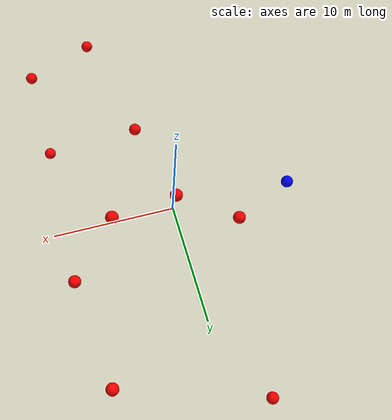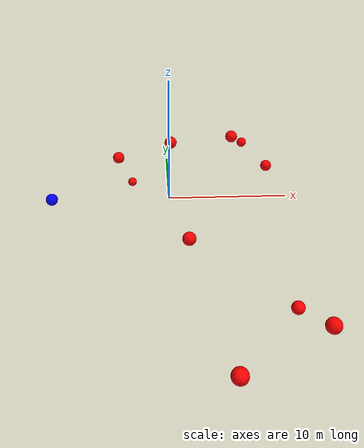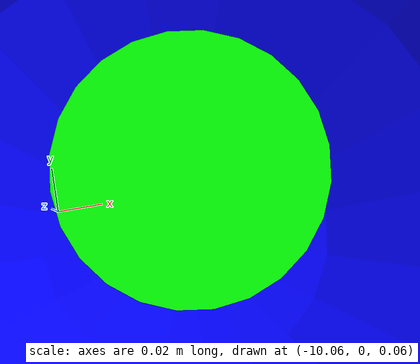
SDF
<?xml version="1.0" ?>
<sdf version="1.8">
    <world name="3d_world">
        <physics name="1ms" type="ode">
            <max_step_size>0.001</max_step_size>
            <real_time_factor>1.0</real_time_factor>
            <real_time_update_rate>1000.0</real_time_update_rate>
        </physics>
        <gravity>0 0 0</gravity>

        <plugin
            filename="gz-sim-physics-system"
            name="gz::sim::v8::systems::Physics">
        </plugin>
        <plugin
            filename="libignition-gazebo-user-commands-system.so"
            name="ignition::gazebo::systems::UserCommands">
        </plugin>
        <plugin
            filename="gz-sim-scene-broadcaster-system"
            name="gz::sim::systems::SceneBroadcaster">
        </plugin>
        <plugin
            filename="gz-sim-sensors-system"
            name="gz::sim::systems::Sensors">
            <render_engine>ogre2</render_engine>
        </plugin>

        <light type="directional" name="sun">
            <cast_shadows>true</cast_shadows>
            <pose>0 0 10 0 0 0</pose>
            <diffuse>0.8 0.8 0.8 1</diffuse>
            <specular>0.2 0.2 0.2 1</specular>
            <attenuation>
                <range>1000</range>
                <constant>0.9</constant>
                <linear>0.01</linear>
                <quadratic>0.001</quadratic>
            </attenuation>
            <direction>-0.5 0.1 -0.9</direction>
        </light>

        <!-- AGENTE -->
        <model name='agente' canonical_link='chassis'>
            <pose relative_to='world'>-10.0 0 0.0 0 0 0</pose>
            <link name='chassis'>
                <pose relative_to='__model__'>0.0 0 0.0 0 0 0</pose>
                <inertial>
                    <mass>1.14395</mass>
                    <inertia>
                        <ixx>0.095329</ixx>
                        <ixy>0</ixy>
                        <ixz>0</ixz>
                        <iyy>0.381317</iyy>
                        <iyz>0</iyz>
                        <izz>0.476646</izz>
                    </inertia>
                </inertial>
                <visual name='visual'>
                    <geometry>
                        <sphere>
                            <radius>0.5</radius>
                        </sphere>
                    </geometry>
                    <material>
                        <ambient>0.0 0.0 1.0 1</ambient>
                        <diffuse>0.0 0.0 1.0 1</diffuse>
                        <specular>0.0 0.0 1.0 1</specular>
                    </material>
                </visual>
                <collision name='collision'>
                    <geometry>
                        <sphere>
                            <radius>0.5</radius>
                        </sphere>
                    </geometry>
                </collision>
                <enable_gravity>false</enable_gravity>
            </link>

            <link name='lidar_link'>
                <pose relative_to='chassis'>0.0 0 0.1 0 0 0</pose>
                <inertial>
                    <mass>0.1</mass>
                    <inertia>
                        <ixx>0.000166667</ixx>
                        <iyy>0.000166667</iyy>
                        <izz>0.000166667</izz>
                    </inertia>
                </inertial>
                <collision name='collision'>
                    <geometry>
                        <cylinder>
                            <radius>0.05</radius>
                            <length>0.1</length>
                        </cylinder>
                    </geometry>
                </collision>
                <visual name='visual'>
                    <geometry>
                        <cylinder>
                            <radius>0.05</radius>
                            <length>0.1</length>
                        </cylinder>
                    </geometry>
                    <material>
                        <ambient>0.0 1.0 0.0 1</ambient>
                        <diffuse>0.0 1.0 0.0 1</diffuse>
                        <specular>0.0 1.0 0.0 1</specular>
                    </material>
                </visual>
                <sensor name="lidar" type="gpu_lidar">
                    <topic>scan</topic>
                    <update_rate>10</update_rate>
                    <lidar>
                        <scan>
                            <horizontal>
                                <samples>5000</samples>
                                <resolution>1</resolution>
                                <min_angle>-3.14159</min_angle>
                                <max_angle>3.14159</max_angle>
                            </horizontal>
                        </scan>
                        <range>
                            <min>0.1</min>
                            <max>10.0</max>
                            <resolution>0.01</resolution>
                        </range>
                    </lidar>
                    <visualize>true</visualize>
                    <always_on>true</always_on>
                    <update_rate>10</update_rate>
                    <pose_frame>lidar</pose_frame>
                </sensor>
                <enable_gravity>false</enable_gravity>
            </link>

            <joint name="lidar_joint" type="fixed">
                <parent>chassis</parent>
                <child>lidar_link</child>
            </joint>

            <plugin
                filename="ignition-gazebo-joint-state-publisher-system"
                name="ignition::gazebo::systems::JointStatePublisher">
            </plugin>
            <plugin
                filename="ignition-gazebo-odometry-publisher-system"
                name="ignition::gazebo::systems::OdometryPublisher">
                <dimensions>3</dimensions>
            </plugin>
            <plugin
                filename="ignition-gazebo-velocity-control-system"
                name="ignition::gazebo::systems::VelocityControl">
                <initial_linear>0.0 0 0</initial_linear>
                <initial_angular>0 0 0.0</initial_angular>
            </plugin>
            <plugin
                filename="libignition-gazebo-pose-publisher-system.so"
                name="ignition::gazebo::systems::PosePublisher">
                <topic>/agente/pose</topic>
                <frame_id>agente</frame_id>
                <update_rate>30</update_rate>
            </plugin>
        </model>

        <!-- OBSTACLE 1 -->
        <model name='obstacle_1' canonical_link='obstacle'>
            <static>false</static>
            <pose relative_to='world'>9.19 4.65 1.08 0 0 0</pose>
            <link name='obstacle'>
                <pose relative_to='__model__'>0.0 0 0.0 0 0 0</pose>
                <visual name='visual'>
                    <geometry>
                        <sphere>
                            <radius>0.50</radius>
                        </sphere>
                    </geometry>
                    <material>
                        <ambient>1.0 0.0 0.0 1</ambient>
                        <diffuse>1.0 0.0 0.0 1</diffuse>
                        <specular>1.0 0.0 0.0 1</specular>
                    </material>
                </visual>
                <collision name='collision'>
                    <geometry>
                        <sphere>
                            <radius>0.50</radius>
                        </sphere>
                    </geometry>
                </collision>
                <enable_gravity>false</enable_gravity>
            </link>

            <plugin
                filename="ignition-gazebo-velocity-control-system"
                name="ignition::gazebo::systems::VelocityControl">
                <initial_linear>-0.51 -0.73 -0.17</initial_linear>
                <initial_angular>0 0 0</initial_angular>
            </plugin>

            <plugin
                filename="ignition-gazebo-odometry-publisher-system"
                name="ignition::gazebo::systems::OdometryPublisher">
                <dimensions>3</dimensions>
            </plugin>
        </model>

        <!-- OBSTACLE 2 -->
        <model name='obstacle_2' canonical_link='obstacle'>
            <static>false</static>
            <pose relative_to='world'>-3.93 15.99 -4.92 0 0 0</pose>
            <link name='obstacle'>
                <pose relative_to='__model__'>0.0 0 0.0 0 0 0</pose>
                <visual name='visual'>
                    <geometry>
                        <sphere>
                            <radius>0.50</radius>
                        </sphere>
                    </geometry>
                    <material>
                        <ambient>1.0 0.0 0.0 1</ambient>
                        <diffuse>1.0 0.0 0.0 1</diffuse>
                        <specular>1.0 0.0 0.0 1</specular>
                    </material>
                </visual>
                <collision name='collision'>
                    <geometry>
                        <sphere>
                            <radius>0.50</radius>
                        </sphere>
                    </geometry>
                </collision>
                <enable_gravity>false</enable_gravity>
            </link>

            <plugin
                filename="ignition-gazebo-velocity-control-system"
                name="ignition::gazebo::systems::VelocityControl">
                <initial_linear>1.03 -1.64 0.51</initial_linear>
                <initial_angular>0 0 0</initial_angular>
            </plugin>

            <plugin
                filename="ignition-gazebo-odometry-publisher-system"
                name="ignition::gazebo::systems::OdometryPublisher">
                <dimensions>3</dimensions>
            </plugin>
        </model>

        <!-- OBSTACLE 3 -->
        <model name='obstacle_3' canonical_link='obstacle'>
            <static>false</static>
            <pose relative_to='world'>-4.43 3.29 2.54 0 0 0</pose>
            <link name='obstacle'>
                <pose relative_to='__model__'>0.0 0 0.0 0 0 0</pose>
                <visual name='visual'>
                    <geometry>
                        <sphere>
                            <radius>0.50</radius>
                        </sphere>
                    </geometry>
                    <material>
                        <ambient>1.0 0.0 0.0 1</ambient>
                        <diffuse>1.0 0.0 0.0 1</diffuse>
                        <specular>1.0 0.0 0.0 1</specular>
                    </material>
                </visual>
                <collision name='collision'>
                    <geometry>
                        <sphere>
                            <radius>0.50</radius>
                        </sphere>
                    </geometry>
                </collision>
                <enable_gravity>false</enable_gravity>
            </link>

            <plugin
                filename="ignition-gazebo-velocity-control-system"
                name="ignition::gazebo::systems::VelocityControl">
                <initial_linear>1.39 -0.65 -0.50</initial_linear>
                <initial_angular>0 0 0</initial_angular>
            </plugin>

            <plugin
                filename="ignition-gazebo-odometry-publisher-system"
                name="ignition::gazebo::systems::OdometryPublisher">
                <dimensions>3</dimensions>
            </plugin>
        </model>

        <!-- OBSTACLE 4 -->
        <model name='obstacle_4' canonical_link='obstacle'>
            <static>false</static>
            <pose relative_to='world'>8.29 13.32 0.64 0 0 0</pose>
            <link name='obstacle'>
                <pose relative_to='__model__'>0.0 0 0.0 0 0 0</pose>
                <visual name='visual'>
                    <geometry>
                        <sphere>
                            <radius>0.50</radius>
                        </sphere>
                    </geometry>
                    <material>
                        <ambient>1.0 0.0 0.0 1</ambient>
                        <diffuse>1.0 0.0 0.0 1</diffuse>
                        <specular>1.0 0.0 0.0 1</specular>
                    </material>
                </visual>
                <collision name='collision'>
                    <geometry>
                        <sphere>
                            <radius>0.50</radius>
                        </sphere>
                    </geometry>
                </collision>
                <enable_gravity>false</enable_gravity>
            </link>

            <plugin
                filename="ignition-gazebo-velocity-control-system"
                name="ignition::gazebo::systems::VelocityControl">
                <initial_linear>-0.69 -1.87 -0.09</initial_linear>
                <initial_angular>0 0 0</initial_angular>
            </plugin>

            <plugin
                filename="ignition-gazebo-odometry-publisher-system"
                name="ignition::gazebo::systems::OdometryPublisher">
                <dimensions>3</dimensions>
            </plugin>
        </model>

        <!-- OBSTACLE 5 -->
        <model name='obstacle_5' canonical_link='obstacle'>
            <static>false</static>
            <pose relative_to='world'>0.16 1.14 4.57 0 0 0</pose>
            <link name='obstacle'>
                <pose relative_to='__model__'>0.0 0 0.0 0 0 0</pose>
                <visual name='visual'>
                    <geometry>
                        <sphere>
                            <radius>0.50</radius>
                        </sphere>
                    </geometry>
                    <material>
                        <ambient>1.0 0.0 0.0 1</ambient>
                        <diffuse>1.0 0.0 0.0 1</diffuse>
                        <specular>1.0 0.0 0.0 1</specular>
                    </material>
                </visual>
                <collision name='collision'>
                    <geometry>
                        <sphere>
                            <radius>0.50</radius>
                        </sphere>
                    </geometry>
                </collision>
                <enable_gravity>false</enable_gravity>
            </link>

            <plugin
                filename="ignition-gazebo-velocity-control-system"
                name="ignition::gazebo::systems::VelocityControl">
                <initial_linear>-0.33 -0.32 -1.27</initial_linear>
                <initial_angular>0 0 0</initial_angular>
            </plugin>

            <plugin
                filename="ignition-gazebo-odometry-publisher-system"
                name="ignition::gazebo::systems::OdometryPublisher">
                <dimensions>3</dimensions>
            </plugin>
        </model>

        <!-- OBSTACLE 6 -->
        <model name='obstacle_6' canonical_link='obstacle'>
            <static>false</static>
            <pose relative_to='world'>5.38 1.84 4.83 0 0 0</pose>
            <link name='obstacle'>
                <pose relative_to='__model__'>0.0 0 0.0 0 0 0</pose>
                <visual name='visual'>
                    <geometry>
                        <sphere>
                            <radius>0.50</radius>
                        </sphere>
                    </geometry>
                    <material>
                        <ambient>1.0 0.0 0.0 1</ambient>
                        <diffuse>1.0 0.0 0.0 1</diffuse>
                        <specular>1.0 0.0 0.0 1</specular>
                    </material>
                </visual>
                <collision name='collision'>
                    <geometry>
                        <sphere>
                            <radius>0.50</radius>
                        </sphere>
                    </geometry>
                </collision>
                <enable_gravity>false</enable_gravity>
            </link>

            <plugin
                filename="ignition-gazebo-velocity-control-system"
                name="ignition::gazebo::systems::VelocityControl">
                <initial_linear>-0.90 -0.41 -1.07</initial_linear>
                <initial_angular>0 0 0</initial_angular>
            </plugin>

            <plugin
                filename="ignition-gazebo-odometry-publisher-system"
                name="ignition::gazebo::systems::OdometryPublisher">
                <dimensions>3</dimensions>
            </plugin>
        </model>

        <!-- OBSTACLE 7 -->
        <model name='obstacle_7' canonical_link='obstacle'>
            <static>false</static>
            <pose relative_to='world'>1.18 -8.12 0.37 0 0 0</pose>
            <link name='obstacle'>
                <pose relative_to='__model__'>0.0 0 0.0 0 0 0</pose>
                <visual name='visual'>
                    <geometry>
                        <sphere>
                            <radius>0.50</radius>
                        </sphere>
                    </geometry>
                    <material>
                        <ambient>1.0 0.0 0.0 1</ambient>
                        <diffuse>1.0 0.0 0.0 1</diffuse>
                        <specular>1.0 0.0 0.0 1</specular>
                    </material>
                </visual>
                <collision name='collision'>
                    <geometry>
                        <sphere>
                            <radius>0.50</radius>
                        </sphere>
                    </geometry>
                </collision>
                <enable_gravity>false</enable_gravity>
            </link>

            <plugin
                filename="ignition-gazebo-velocity-control-system"
                name="ignition::gazebo::systems::VelocityControl">
                <initial_linear>-0.77 1.84 -0.08</initial_linear>
                <initial_angular>0 0 0</initial_angular>
            </plugin>

            <plugin
                filename="ignition-gazebo-odometry-publisher-system"
                name="ignition::gazebo::systems::OdometryPublisher">
                <dimensions>3</dimensions>
            </plugin>
        </model>

        <!-- OBSTACLE 8 -->
        <model name='obstacle_8' canonical_link='obstacle'>
            <static>false</static>
            <pose relative_to='world'>8.89 -16.73 -0.76 0 0 0</pose>
            <link name='obstacle'>
                <pose relative_to='__model__'>0.0 0 0.0 0 0 0</pose>
                <visual name='visual'>
                    <geometry>
                        <sphere>
                            <radius>0.50</radius>
                        </sphere>
                    </geometry>
                    <material>
                        <ambient>1.0 0.0 0.0 1</ambient>
                        <diffuse>1.0 0.0 0.0 1</diffuse>
                        <specular>1.0 0.0 0.0 1</specular>
                    </material>
                </visual>
                <collision name='collision'>
                    <geometry>
                        <sphere>
                            <radius>0.50</radius>
                        </sphere>
                    </geometry>
                </collision>
                <enable_gravity>false</enable_gravity>
            </link>

            <plugin
                filename="ignition-gazebo-velocity-control-system"
                name="ignition::gazebo::systems::VelocityControl">
                <initial_linear>-0.90 1.78 0.08</initial_linear>
                <initial_angular>0 0 0</initial_angular>
            </plugin>

            <plugin
                filename="ignition-gazebo-odometry-publisher-system"
                name="ignition::gazebo::systems::OdometryPublisher">
                <dimensions>3</dimensions>
            </plugin>
        </model>

        <!-- OBSTACLE 9 -->
        <model name='obstacle_9' canonical_link='obstacle'>
            <static>false</static>
            <pose relative_to='world'>3.08 -19.66 -1.49 0 0 0</pose>
            <link name='obstacle'>
                <pose relative_to='__model__'>0.0 0 0.0 0 0 0</pose>
                <visual name='visual'>
                    <geometry>
                        <sphere>
                            <radius>0.50</radius>
                        </sphere>
                    </geometry>
                    <material>
                        <ambient>1.0 0.0 0.0 1</ambient>
                        <diffuse>1.0 0.0 0.0 1</diffuse>
                        <specular>1.0 0.0 0.0 1</specular>
                    </material>
                </visual>
                <collision name='collision'>
                    <geometry>
                        <sphere>
                            <radius>0.50</radius>
                        </sphere>
                    </geometry>
                </collision>
                <enable_gravity>false</enable_gravity>
            </link>

            <plugin
                filename="ignition-gazebo-velocity-control-system"
                name="ignition::gazebo::systems::VelocityControl">
                <initial_linear>0.06 1.99 0.15</initial_linear>
                <initial_angular>0 0 0</initial_angular>
            </plugin>

            <plugin
                filename="ignition-gazebo-odometry-publisher-system"
                name="ignition::gazebo::systems::OdometryPublisher">
                <dimensions>3</dimensions>
            </plugin>
        </model>

        <!-- OBSTACLE 10 -->
        <model name='obstacle_10' canonical_link='obstacle'>
            <static>false</static>
            <pose relative_to='world'>8.81 -10.42 -4.10 0 0 0</pose>
            <link name='obstacle'>
                <pose relative_to='__model__'>0.0 0 0.0 0 0 0</pose>
                <visual name='visual'>
                    <geometry>
                        <sphere>
                            <radius>0.50</radius>
                        </sphere>
                    </geometry>
                    <material>
                        <ambient>1.0 0.0 0.0 1</ambient>
                        <diffuse>1.0 0.0 0.0 1</diffuse>
                        <specular>1.0 0.0 0.0 1</specular>
                    </material>
                </visual>
                <collision name='collision'>
                    <geometry>
                        <sphere>
                            <radius>0.50</radius>
                        </sphere>
                    </geometry>
                </collision>
                <enable_gravity>false</enable_gravity>
            </link>

            <plugin
                filename="ignition-gazebo-velocity-control-system"
                name="ignition::gazebo::systems::VelocityControl">
                <initial_linear>-0.28 1.54 0.61</initial_linear>
                <initial_angular>0 0 0</initial_angular>
            </plugin>

            <plugin
                filename="ignition-gazebo-odometry-publisher-system"
                name="ignition::gazebo::systems::OdometryPublisher">
                <dimensions>3</dimensions>
            </plugin>
        </model>

    </world>
</sdf>
